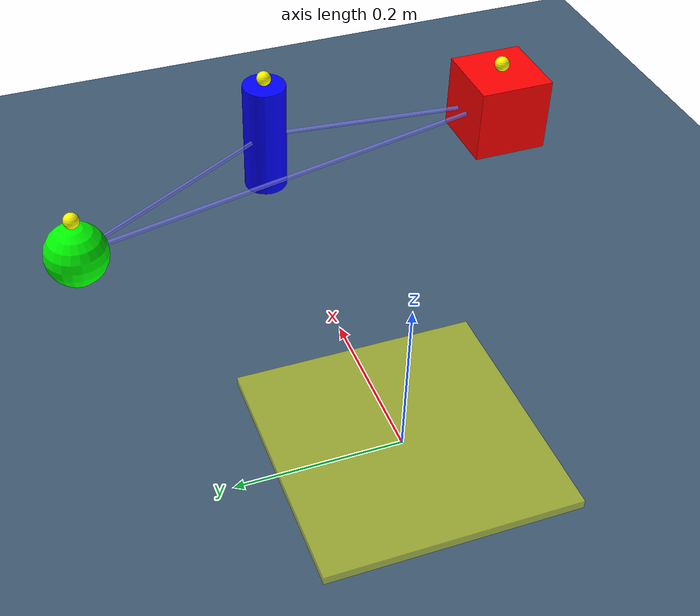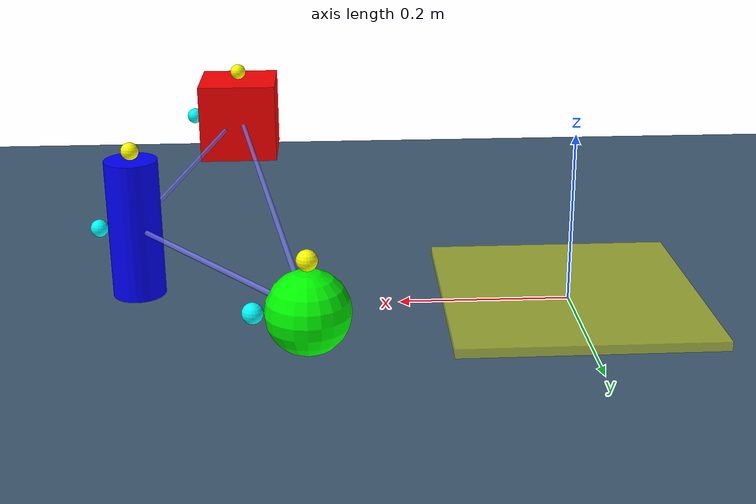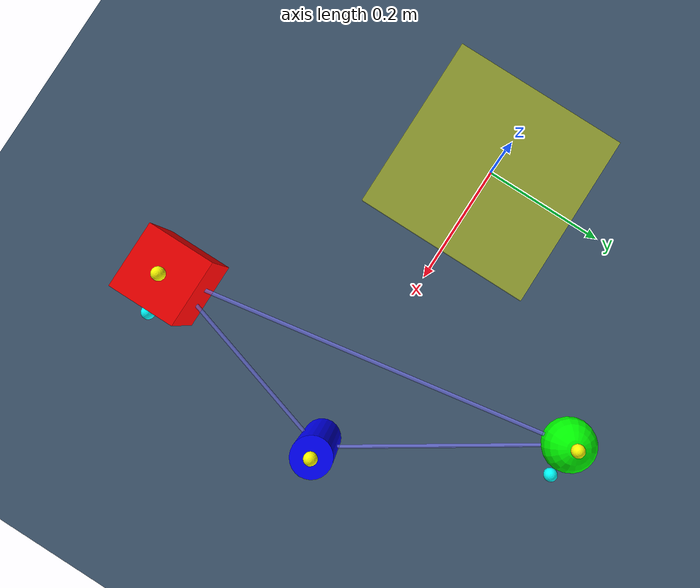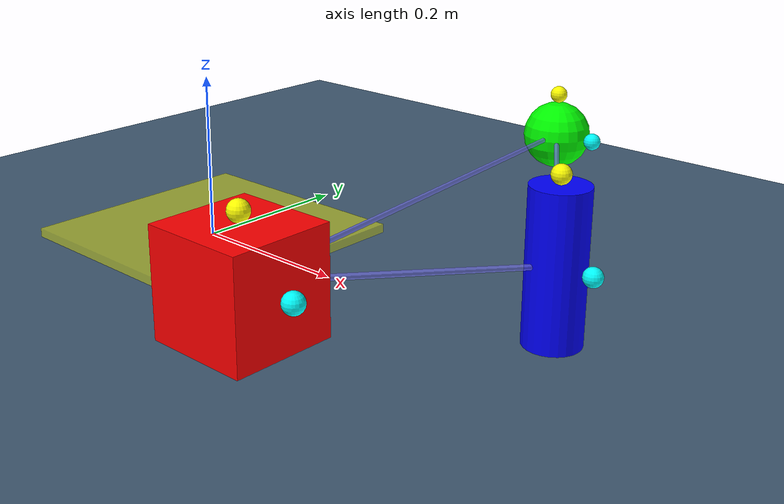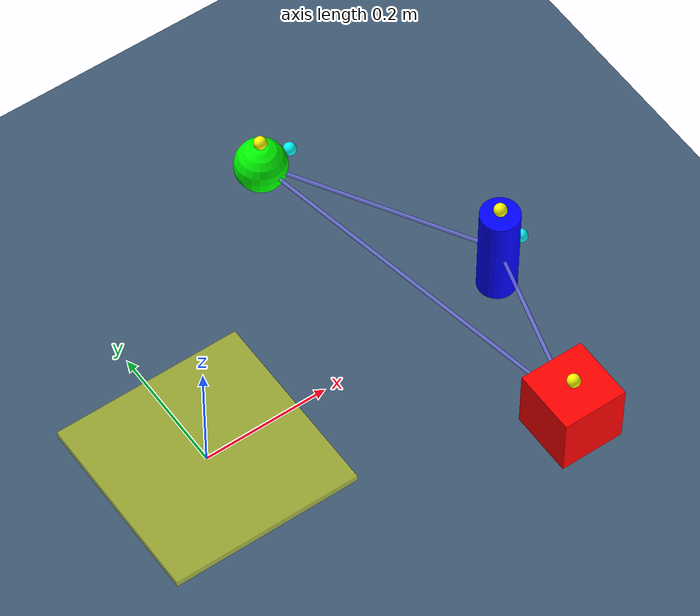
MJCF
<?xml version="1.0" encoding="utf-8"?>
<mujoco><worldbody><light pos="2 2 4" dir="-1 -1 -2" /><light pos="-2 1 3" dir="1 -0.5 -1" /><geom name="floor" type="plane" pos="0 0 0" size="3 3 0.1" material="floor_mat" /><body name="red_box" pos="0.4 -0.3 0.15"><freejoint /><geom name="red_box_geom" type="box" size="0.05 0.05 0.05" rgba="1 0 0 1" friction="0.8 0.05 0.01" /><site name="red_box_grasp_top" pos="0 0 0.06" size="0.01" rgba="1 1 0 1" /><site name="red_box_grasp_side" pos="0.06 0 0" size="0.01" rgba="0 1 1 1" /><site name="red_box_center" pos="0 0 0" size="0.005" rgba="1 0 1 0.5" /></body><body name="blue_cylinder" pos="0.5 0 0.1"><freejoint /><geom name="blue_cylinder_geom" type="cylinder" size="0.03 0.08" rgba="0 0 1 1" friction="0.8 0.05 0.01" /><site name="blue_cylinder_grasp_top" pos="0 0 0.09" size="0.01" rgba="1 1 0 1" /><site name="blue_cylinder_grasp_side" pos="0.04 0 0" size="0.01" rgba="0 1 1 1" /><site name="blue_cylinder_center" pos="0 0 0" size="0.005" rgba="1 0 1 0.5" /></body><body name="green_sphere" pos="0.3 0.3 0.125"><freejoint /><geom name="green_sphere_geom" type="sphere" size="0.04" rgba="0 1 0 1" friction="0.8 0.05 0.01" /><site name="green_sphere_grasp_top" pos="0 0 0.05" size="0.01" rgba="1 1 0 1" /><site name="green_sphere_grasp_side" pos="0.05 0 0" size="0.01" rgba="0 1 1 1" /><site name="green_sphere_center" pos="0 0 0" size="0.005" rgba="1 0 1 0.5" /></body><body name="goal_area" pos="0.8 0 0.01" /><geom name="goal_platform" type="box" size="0.15 0.15 0.01" rgba="1 1 0 0.5" contype="0" conaffinity="0" /></worldbody><option gravity="0 0 -9.81" timestep="0.002" /><default><geom friction="0.9 0.05 0.01" condim="4" /><joint damping="0.1" armature="0.01" /></default><asset><texture name="checker" type="2d" builtin="checker" rgb1="0.2 0.3 0.4" rgb2="0.3 0.4 0.5" width="512" height="512" /><material name="floor_mat" texture="checker" texrepeat="5 5" reflectance="0.1" /></asset><tendon><spatial name="connection_1" rgba="0.5 0.5 1 0.7" stiffness="20" damping="2" springlength="0.2"><site site="red_box_center" /><site site="blue_cylinder_center" /></spatial><spatial name="connection_2" rgba="0.5 0.5 1 0.7" stiffness="20" damping="2" springlength="0.2"><site site="red_box_center" /><site site="green_sphere_center" /></spatial><spatial name="connection_3" rgba="0.5 0.5 1 0.7" stiffness="20" damping="2" springlength="0.2"><site site="blue_cylinder_center" /><site site="green_sphere_center" /></spatial></tendon></mujoco>
